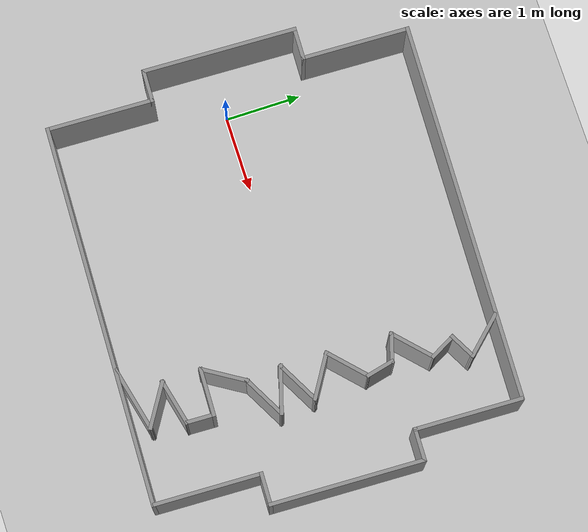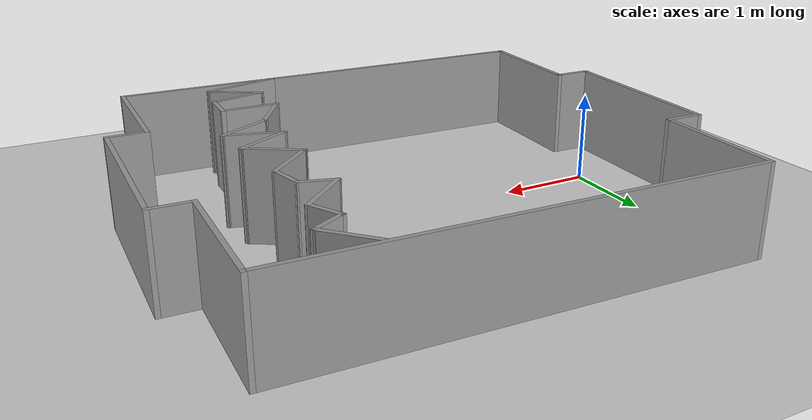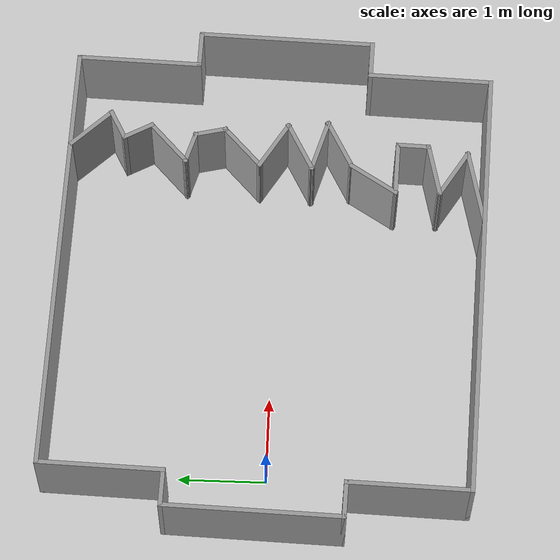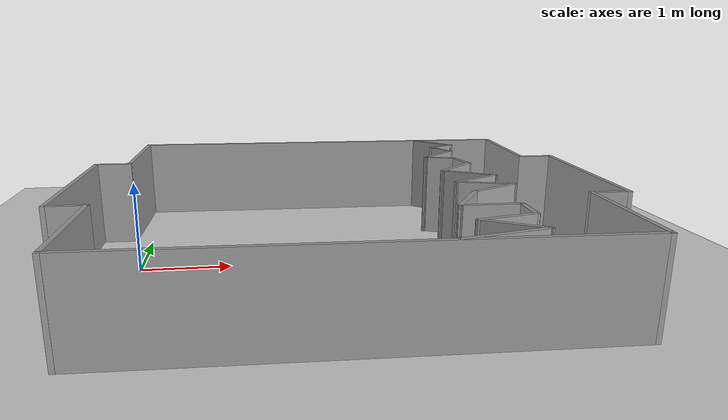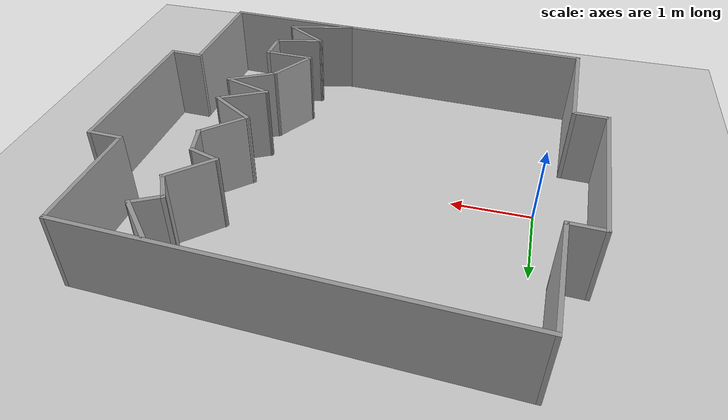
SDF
<sdf version="1.6">
 <world name="default">
  <light name="sun" type="directional">
   <pose>0 0 10 0 -0 0</pose>
   <diffuse>0.8 0.8 0.8 1</diffuse>
   <specular>0.2 0.2 0.2 1</specular>
   <attenuation>
    <range>1000</range>
    <constant>0.9</constant>
    <linear>0.01</linear>
    <quadratic>0.001</quadratic>
   </attenuation>
   <direction>-0.5 0.1 -0.9</direction>
  </light>
  <model name="ground_plane">
   <static>1</static>
   <link name="link">
    <collision name="collision">
     <geometry><plane><normal>0 0 1</normal><size>100 100</size></plane></geometry>
     <surface><friction><ode><mu>100</mu><mu2>50</mu2></ode></friction></surface>
    </collision>
    <visual name="visual">
     <cast_shadows>0</cast_shadows>
     <geometry><plane><normal>0 0 1</normal><size>100 100</size></plane></geometry>
     <material>
      <script><uri>file://media/materials/scripts/gazebo.material</uri><name>Gazebo/Grey</name></script>
     </material>
    </visual>
   </link>
  </model>
  <gravity>0 0 -9.8</gravity>
  <magnetic_field>6e-06 2.3e-05 -4.2e-05</magnetic_field>
  <atmosphere type="adiabatic"/>
  <physics name="default_physics" default="0" type="ode">
   <max_step_size>0.001</max_step_size>
   <real_time_factor>1</real_time_factor>
   <real_time_update_rate>1000</real_time_update_rate>
  </physics>
  <scene><ambient>0.4 0.4 0.4 1</ambient><background>0.7 0.7 0.7 1</background><shadows>1</shadows></scene>
  <spherical_coordinates>
   <surface_model>EARTH_WGS84</surface_model>
   <latitude_deg>0</latitude_deg>
   <longitude_deg>0</longitude_deg>
   <elevation>0</elevation>
   <heading_deg>0</heading_deg>
  </spherical_coordinates>
  <model name="rgarena5">
   <pose>2.24095 0.042927 0 0 0 -1.60274</pose>
   <link name="Wall_0">
    <collision name="Wall_0_Collision">
     <geometry><box><size>5.05 0.05 1</size></box></geometry>
     <pose>0 0 0.5 0 -0 0</pose>
    </collision>
    <visual name="Wall_0_Visual">
     <pose>0 0 0.5 0 -0 0</pose>
     <geometry><box><size>5.05 0.05 1</size></box></geometry>
     <material>
      <script><uri>file://media/materials/scripts/gazebo.material</uri><name>Gazebo/Grey</name></script>
      <ambient>1 1 1 1</ambient>
     </material>
     <meta><layer>0</layer></meta>
    </visual>
    <pose>-2.40022 0 0 0 -0 1.5708</pose>
   </link>
   <link name="Wall_14">
    <collision name="Wall_14_Collision">
     <geometry><box><size>1.45 0.05 1</size></box></geometry>
     <pose>0 0 0.5 0 -0 0</pose>
    </collision>
    <visual name="Wall_14_Visual">
     <pose>0 0 0.5 0 -0 0</pose>
     <geometry><box><size>1.45 0.05 1</size></box></geometry>
     <material>
      <script><uri>file://media/materials/scripts/gazebo.material</uri><name>Gazebo/Grey</name></script>
      <ambient>1 1 1 1</ambient>
     </material>
     <meta><layer>0</layer></meta>
    </visual>
    <pose>-1.70023 -2.5 0 0 -0 0</pose>
   </link>
   <link name="Wall_16">
    <collision name="Wall_16_Collision">
     <geometry><box><size>0.45 0.05 1</size></box></geometry>
     <pose>0 0 0.5 0 -0 0</pose>
    </collision>
    <visual name="Wall_16_Visual">
     <pose>0 0 0.5 0 -0 0</pose>
     <geometry><box><size>0.45 0.05 1</size></box></geometry>
     <material>
      <script><uri>file://media/materials/scripts/gazebo.material</uri><name>Gazebo/Grey</name></script>
      <ambient>1 1 1 1</ambient>
     </material>
     <meta><layer>0</layer></meta>
    </visual>
    <pose>-1.00022 -2.7 0 0 -0 -1.5708</pose>
   </link>
   <link name="Wall_18">
    <collision name="Wall_18_Collision">
     <geometry><box><size>2.065 0.05 1</size></box></geometry>
     <pose>0 0 0.5 0 -0 0</pose>
    </collision>
    <visual name="Wall_18_Visual">
     <pose>0 0 0.5 0 -0 0</pose>
     <geometry><box><size>2.065 0.05 1</size></box></geometry>
     <material>
      <script><uri>file://media/materials/scripts/gazebo.material</uri><name>Gazebo/Grey</name></script>
      <ambient>1 1 1 1</ambient>
     </material>
     <meta><layer>0</layer></meta>
    </visual>
    <pose>0.007275 -2.9 0 0 -0 0</pose>
   </link>
   <link name="Wall_19">
    <collision name="Wall_19_Collision">
     <geometry><box><size>0.45 0.05 1</size></box></geometry>
     <pose>0 0 0.5 0 -0 0</pose>
    </collision>
    <visual name="Wall_19_Visual">
     <pose>0 0 0.5 0 -0 0</pose>
     <geometry><box><size>0.45 0.05 1</size></box></geometry>
     <material>
      <script><uri>file://media/materials/scripts/gazebo.material</uri><name>Gazebo/Grey</name></script>
      <ambient>1 1 1 1</ambient>
     </material>
     <meta><layer>0</layer></meta>
    </visual>
    <pose>1.01477 -2.7 0 0 -0 1.5708</pose>
   </link>
   <link name="Wall_20">
    <collision name="Wall_20_Collision">
     <geometry><box><size>1.4359 0.05 1</size></box></geometry>
     <pose>0 0 0.5 0 -0 0</pose>
    </collision>
    <visual name="Wall_20_Visual">
     <pose>0 0 0.5 0 -0 0</pose>
     <geometry><box><size>1.4359 0.05 1</size></box></geometry>
     <material>
      <script><uri>file://media/materials/scripts/gazebo.material</uri><name>Gazebo/Grey</name></script>
      <ambient>1 1 1 1</ambient>
     </material>
     <meta><layer>0</layer></meta>
    </visual>
    <pose>1.70728 -2.5 0 0 -0 0</pose>
   </link>
   <link name="Wall_23">
    <collision name="Wall_23_Collision">
     <geometry><box><size>5.05 0.05 1</size></box></geometry>
     <pose>0 0 0.5 0 -0 0</pose>
    </collision>
    <visual name="Wall_23_Visual">
     <pose>0 0 0.5 0 -0 0</pose>
     <geometry><box><size>5.05 0.05 1</size></box></geometry>
     <material>
      <script><uri>file://media/materials/scripts/gazebo.material</uri><name>Gazebo/Grey</name></script>
      <ambient>1 1 1 1</ambient>
     </material>
     <meta><layer>0</layer></meta>
    </visual>
    <pose>2.39977 0 0 0 -0 1.5708</pose>
   </link>
   <link name="Wall_25">
    <collision name="Wall_25_Collision">
     <geometry><box><size>1.45 0.05 1</size></box></geometry>
     <pose>0 0 0.5 0 -0 0</pose>
    </collision>
    <visual name="Wall_25_Visual">
     <pose>0 0 0.5 0 -0 0</pose>
     <geometry><box><size>1.45 0.05 1</size></box></geometry>
     <material>
      <script><uri>file://media/materials/scripts/gazebo.material</uri><name>Gazebo/Grey</name></script>
      <ambient>1 1 1 1</ambient>
     </material>
     <meta><layer>0</layer></meta>
    </visual>
    <pose>1.69978 2.5 0 0 -0 3.14159</pose>
   </link>
   <link name="Wall_28">
    <collision name="Wall_28_Collision">
     <geometry><box><size>0.45 0.05 1</size></box></geometry>
     <pose>0 0 0.5 0 -0 0</pose>
    </collision>
    <visual name="Wall_28_Visual">
     <pose>0 0 0.5 0 -0 0</pose>
     <geometry><box><size>0.45 0.05 1</size></box></geometry>
     <material>
      <script><uri>file://media/materials/scripts/gazebo.material</uri><name>Gazebo/Grey</name></script>
      <ambient>1 1 1 1</ambient>
     </material>
     <meta><layer>0</layer></meta>
    </visual>
    <pose>0.999775 2.7 0 0 -0 1.5708</pose>
   </link>
   <link name="Wall_29">
    <collision name="Wall_29_Collision">
     <geometry><box><size>2.05 0.05 1</size></box></geometry>
     <pose>0 0 0.5 0 -0 0</pose>
    </collision>
    <visual name="Wall_29_Visual">
     <pose>0 0 0.5 0 -0 0</pose>
     <geometry><box><size>2.05 0.05 1</size></box></geometry>
     <material>
      <script><uri>file://media/materials/scripts/gazebo.material</uri><name>Gazebo/Grey</name></script>
      <ambient>1 1 1 1</ambient>
     </material>
     <meta><layer>0</layer></meta>
    </visual>
    <pose>-0.000225 2.9 0 0 -0 3.14159</pose>
   </link>
   <link name="Wall_30">
    <collision name="Wall_30_Collision">
     <geometry><box><size>0.45 0.05 1</size></box></geometry>
     <pose>0 0 0.5 0 -0 0</pose>
    </collision>
    <visual name="Wall_30_Visual">
     <pose>0 0 0.5 0 -0 0</pose>
     <geometry><box><size>0.45 0.05 1</size></box></geometry>
     <material>
      <script><uri>file://media/materials/scripts/gazebo.material</uri><name>Gazebo/Grey</name></script>
      <ambient>1 1 1 1</ambient>
     </material>
     <meta><layer>0</layer></meta>
    </visual>
    <pose>-1.00022 2.7 0 0 -0 -1.5708</pose>
   </link>
   <link name="Wall_31">
    <collision name="Wall_31_Collision">
     <geometry><box><size>1.45 0.05 1</size></box></geometry>
     <pose>0 0 0.5 0 -0 0</pose>
    </collision>
    <visual name="Wall_31_Visual">
     <pose>0 0 0.5 0 -0 0</pose>
     <geometry><box><size>1.45 0.05 1</size></box></geometry>
     <material>
      <script><uri>file://media/materials/scripts/gazebo.material</uri><name>Gazebo/Grey</name></script>
      <ambient>1 1 1 1</ambient>
     </material>
     <meta><layer>0</layer></meta>
    </visual>
    <pose>-1.70023 2.5 0 0 -0 3.14159</pose>
   </link>
   <link name="Wall_45">
    <collision name="Wall_45_Collision">
     <geometry><box><size>0.649636 0.05 1</size></box></geometry>
     <pose>0 0 0.5 0 -0 0</pose>
    </collision>
    <visual name="Wall_45_Visual">
     <pose>0 0 0.5 0 -0 0</pose>
     <geometry><box><size>0.649636 0.05 1</size></box></geometry>
     <material>
      <script><uri>file://media/materials/scripts/gazebo.material</uri><name>Gazebo/Grey</name></script>
      <ambient>1 1 1 1</ambient>
     </material>
     <meta><layer>0</layer></meta>
    </visual>
    <pose>-2.17422 1.598 0 0 -0 0.785398</pose>
   </link>
   <link name="Wall_46">
    <collision name="Wall_46_Collision">
     <geometry><box><size>0.399906 0.05 1</size></box></geometry>
     <pose>0 0 0.5 0 -0 0</pose>
    </collision>
    <visual name="Wall_46_Visual">
     <pose>0 0 0.5 0 -0 0</pose>
     <geometry><box><size>0.399906 0.05 1</size></box></geometry>
     <material>
      <script><uri>file://media/materials/scripts/gazebo.material</uri><name>Gazebo/Grey</name></script>
      <ambient>1 1 1 1</ambient>
     </material>
     <meta><layer>0</layer></meta>
    </visual>
    <pose>-1.87472 1.6585 0 0 -0 -1.04704</pose>
   </link>
   <link name="Wall_47">
    <collision name="Wall_47_Collision">
     <geometry><box><size>0.399907 0.05 1</size></box></geometry>
     <pose>0 0 0.5 0 -0 0</pose>
    </collision>
    <visual name="Wall_47_Visual">
     <pose>0 0 0.5 0 -0 0</pose>
     <geometry><box><size>0.399907 0.05 1</size></box></geometry>
     <material>
      <script><uri>file://media/materials/scripts/gazebo.material</uri><name>Gazebo/Grey</name></script>
      <ambient>1 1 1 1</ambient>
     </material>
     <meta><layer>0</layer></meta>
    </visual>
    <pose>-1.63573 1.5945 0 0 -0 0.523754</pose>
   </link>
   <link name="Wall_48">
    <collision name="Wall_48_Collision">
     <geometry><box><size>0.649969 0.05 1</size></box></geometry>
     <pose>0 0 0.5 0 -0 0</pose>
    </collision>
    <visual name="Wall_48_Visual">
     <pose>0 0 0.5 0 -0 0</pose>
     <geometry><box><size>0.649969 0.05 1</size></box></geometry>
     <material>
      <script><uri>file://media/materials/scripts/gazebo.material</uri><name>Gazebo/Grey</name></script>
      <ambient>1 1 1 1</ambient>
     </material>
     <meta><layer>0</layer></meta>
    </visual>
    <pose>-1.27222 1.47 0 0 -0 -0.785398</pose>
   </link>
   <link name="Wall_49">
    <collision name="Wall_49_Collision">
     <geometry><box><size>0.399837 0.05 1</size></box></geometry>
     <pose>0 0 0.5 0 -0 0</pose>
    </collision>
    <visual name="Wall_49_Visual">
     <pose>0 0 0.5 0 -0 0</pose>
     <geometry><box><size>0.399837 0.05 1</size></box></geometry>
     <material>
      <script><uri>file://media/materials/scripts/gazebo.material</uri><name>Gazebo/Grey</name></script>
      <ambient>1 1 1 1</ambient>
     </material>
     <meta><layer>0</layer></meta>
    </visual>
    <pose>-1.01473 1.427 0 0 -0 1.3078</pose>
   </link>
   <link name="Wall_50">
    <collision name="Wall_50_Collision">
     <geometry><box><size>0.3998 0.05 1</size></box></geometry>
     <pose>0 0 0.5 0 -0 0</pose>
    </collision>
    <visual name="Wall_50_Visual">
     <pose>0 0 0.5 0 -0 0</pose>
     <geometry><box><size>0.3998 0.05 1</size></box></geometry>
     <material>
      <script><uri>file://media/materials/scripts/gazebo.material</uri><name>Gazebo/Grey</name></script>
      <ambient>1 1 1 1</ambient>
     </material>
     <meta><layer>0</layer></meta>
    </visual>
    <pose>-0.800225 1.641 0 0 -0 0.260234</pose>
   </link>
   <link name="Wall_51">
    <collision name="Wall_51_Collision">
     <geometry><box><size>0.649635 0.05 1</size></box></geometry>
     <pose>0 0 0.5 0 -0 0</pose>
    </collision>
    <visual name="Wall_51_Visual">
     <pose>0 0 0.5 0 -0 0</pose>
     <geometry><box><size>0.649635 0.05 1</size></box></geometry>
     <material>
      <script><uri>file://media/materials/scripts/gazebo.material</uri><name>Gazebo/Grey</name></script>
      <ambient>1 1 1 1</ambient>
     </material>
     <meta><layer>0</layer></meta>
    </visual>
    <pose>-0.419225 1.474 0 0 -0 -0.785398</pose>
   </link>
   <link name="Wall_52">
    <collision name="Wall_52_Collision">
     <geometry><box><size>0.650227 0.05 1</size></box></geometry>
     <pose>0 0 0.5 0 -0 0</pose>
    </collision>
    <visual name="Wall_52_Visual">
     <pose>0 0 0.5 0 -0 0</pose>
     <geometry><box><size>0.650227 0.05 1</size></box></geometry>
     <material>
      <script><uri>file://media/materials/scripts/gazebo.material</uri><name>Gazebo/Grey</name></script>
      <ambient>1 1 1 1</ambient>
     </material>
     <meta><layer>0</layer></meta>
    </visual>
    <pose>-0.057225 1.522 0 0 -0 1.04752</pose>
   </link>
   <link name="Wall_53">
    <collision name="Wall_53_Collision">
     <geometry><box><size>0.65028 0.05 1</size></box></geometry>
     <pose>0 0 0.5 0 -0 0</pose>
    </collision>
    <visual name="Wall_53_Visual">
     <pose>0 0 0.5 0 -0 0</pose>
     <geometry><box><size>0.65028 0.05 1</size></box></geometry>
     <material>
      <script><uri>file://media/materials/scripts/gazebo.material</uri><name>Gazebo/Grey</name></script>
      <ambient>1 1 1 1</ambient>
     </material>
     <meta><layer>0</layer></meta>
    </visual>
    <pose>0.242775 1.522 0 0 -0 -1.04752</pose>
   </link>
   <link name="Wall_54">
    <collision name="Wall_54_Collision">
     <geometry><box><size>0.650201 0.05 1</size></box></geometry>
     <pose>0 0 0.5 0 -0 0</pose>
    </collision>
    <visual name="Wall_54_Visual">
     <pose>0 0 0.5 0 -0 0</pose>
     <geometry><box><size>0.650201 0.05 1</size></box></geometry>
     <material>
      <script><uri>file://media/materials/scripts/gazebo.material</uri><name>Gazebo/Grey</name></script>
      <ambient>1 1 1 1</ambient>
     </material>
     <meta><layer>0</layer></meta>
    </visual>
    <pose>0.470275 1.552 0 0 -0 1.30966</pose>
   </link>
   <link name="Wall_55">
    <collision name="Wall_55_Collision">
     <geometry><box><size>0.650478 0.05 1</size></box></geometry>
     <pose>0 0 0.5 0 -0 0</pose>
    </collision>
    <visual name="Wall_55_Visual">
     <pose>0 0 0.5 0 -0 0</pose>
     <geometry><box><size>0.650478 0.05 1</size></box></geometry>
     <material>
      <script><uri>file://media/materials/scripts/gazebo.material</uri><name>Gazebo/Grey</name></script>
      <ambient>1 1 1 1</ambient>
     </material>
     <meta><layer>0</layer></meta>
    </visual>
    <pose>0.697775 1.582 0 0 -0 -1.04752</pose>
   </link>
   <link name="Wall_56">
    <collision name="Wall_56_Collision">
     <geometry><box><size>0.650352 0.05 1</size></box></geometry>
     <pose>0 0 0.5 0 -0 0</pose>
    </collision>
    <visual name="Wall_56_Visual">
     <pose>0 0 0.5 0 -0 0</pose>
     <geometry><box><size>0.650352 0.05 1</size></box></geometry>
     <material>
      <script><uri>file://media/materials/scripts/gazebo.material</uri><name>Gazebo/Grey</name></script>
      <ambient>1 1 1 1</ambient>
     </material>
     <meta><layer>0</layer></meta>
    </visual>
    <pose>1.10777 1.172 0 0 -0 -0.523278</pose>
   </link>
   <link name="Wall_57">
    <collision name="Wall_57_Collision">
     <geometry><box><size>0.650102 0.05 1</size></box></geometry>
     <pose>0 0 0.5 0 -0 0</pose>
    </collision>
    <visual name="Wall_57_Visual">
     <pose>0 0 0.5 0 -0 0</pose>
     <geometry><box><size>0.650102 0.05 1</size></box></geometry>
     <material>
      <script><uri>file://media/materials/scripts/gazebo.material</uri><name>Gazebo/Grey</name></script>
      <ambient>1 1 1 1</ambient>
     </material>
     <meta><layer>0</layer></meta>
    </visual>
    <pose>1.36777 1.322 0 0 -0 1.5708</pose>
   </link>
   <link name="Wall_58">
    <collision name="Wall_58_Collision">
     <geometry><box><size>0.400081 0.05 1</size></box></geometry>
     <pose>0 0 0.5 0 -0 0</pose>
    </collision>
    <visual name="Wall_58_Visual">
     <pose>0 0 0.5 0 -0 0</pose>
     <geometry><box><size>0.400081 0.05 1</size></box></geometry>
     <material>
      <script><uri>file://media/materials/scripts/gazebo.material</uri><name>Gazebo/Grey</name></script>
      <ambient>1 1 1 1</ambient>
     </material>
     <meta><layer>0</layer></meta>
    </visual>
    <pose>1.54278 1.622 0 0 -0 0</pose>
   </link>
   <link name="Wall_59">
    <collision name="Wall_59_Collision">
     <geometry><box><size>0.649923 0.05 1</size></box></geometry>
     <pose>0 0 0.5 0 -0 0</pose>
    </collision>
    <visual name="Wall_59_Visual">
     <pose>0 0 0.5 0 -0 0</pose>
     <geometry><box><size>0.649923 0.05 1</size></box></geometry>
     <material>
      <script><uri>file://media/materials/scripts/gazebo.material</uri><name>Gazebo/Grey</name></script>
      <ambient>1 1 1 1</ambient>
     </material>
     <meta><layer>0</layer></meta>
    </visual>
    <pose>1.79527 1.3325 0 0 -0 -1.30923</pose>
   </link>
   <link name="Wall_60">
    <collision name="Wall_60_Collision">
     <geometry><box><size>0.649793 0.05 1</size></box></geometry>
     <pose>0 0 0.5 0 -0 0</pose>
    </collision>
    <visual name="Wall_60_Visual">
     <pose>0 0 0.5 0 -0 0</pose>
     <geometry><box><size>0.649793 0.05 1</size></box></geometry>
     <material>
      <script><uri>file://media/materials/scripts/gazebo.material</uri><name>Gazebo/Grey</name></script>
      <ambient>1 1 1 1</ambient>
     </material>
     <meta><layer>0</layer></meta>
    </visual>
    <pose>2.02278 1.3025 0 0 -0 1.04668</pose>
   </link>
   <link name="Wall_61">
    <collision name="Wall_61_Collision">
     <geometry><box><size>0.899941 0.05 1</size></box></geometry>
     <pose>0 0 0.5 0 -0 0</pose>
    </collision>
    <visual name="Wall_61_Visual">
     <pose>0 0 0.5 0 -0 0</pose>
     <geometry><box><size>0.899941 0.05 1</size></box></geometry>
     <material>
      <script><uri>file://media/materials/scripts/gazebo.material</uri><name>Gazebo/Grey</name></script>
      <ambient>1 1 1 1</ambient>
     </material>
     <meta><layer>0</layer></meta>
    </visual>
    <pose>2.28277 1.1515 0 0 -0 -1.30898</pose>
   </link>
   <static>1</static>
  </model>
 </world>
</sdf>
